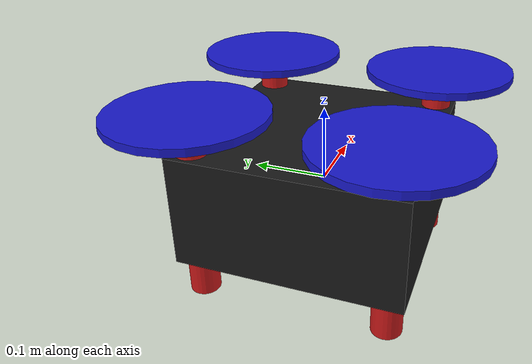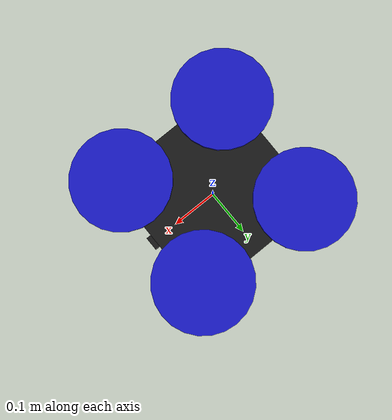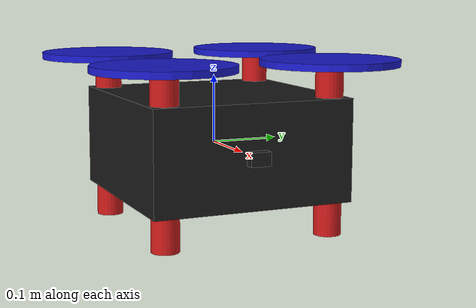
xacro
<?xml version="1.0"?>
<robot name="quadrotor_drone" xmlns:xacro="http://www.ros.org/wiki/xacro">

  <!-- Define properties -->
  <xacro:property name="mass" value="1.0" />
  <xacro:property name="body_width" value="0.3" />
  <xacro:property name="body_height" value="0.15" />
  <xacro:property name="arm_length" value="0.25" />
  <xacro:property name="prop_radius" value="0.1" />

  <!-- Inertia values -->
  <xacro:property name="ixx" value="0.0347563" />
  <xacro:property name="iyy" value="0.0458929" />
  <xacro:property name="izz" value="0.0977" />

  <!-- Include sensor macros -->
  <xacro:include filename="$(find drone_description)/urdf/sensors.xacro" />

  <!-- Base link -->
  <link name="base_link">
    <inertial>
      <origin xyz="0 0 0" rpy="0 0 0"/>
      <mass value="${mass}"/>
      <inertia ixx="${ixx}" ixy="0" ixz="0" iyy="${iyy}" iyz="0" izz="${izz}"/>
    </inertial>

    <visual>
      <origin xyz="0 0 0" rpy="0 0 0"/>
      <geometry>
        <box size="${body_width} ${body_width} ${body_height}"/>
      </geometry>
      <material name="black">
        <color rgba="0.1 0.1 0.1 1"/>
      </material>
    </visual>

    <collision>
      <origin xyz="0 0 0" rpy="0 0 0"/>
      <geometry>
        <box size="${body_width} ${body_width} ${body_height}"/>
      </geometry>
    </collision>
  </link>

  <!-- Front left arm -->
  <link name="front_left_arm">
    <visual>
      <origin xyz="0 0 0" rpy="0 0 0"/>
      <geometry>
        <cylinder radius="0.02" length="${arm_length}"/>
      </geometry>
      <material name="red">
        <color rgba="0.8 0.1 0.1 1"/>
      </material>
    </visual>
    <collision>
      <origin xyz="0 0 0" rpy="0 0 0"/>
      <geometry>
        <cylinder radius="0.02" length="${arm_length}"/>
      </geometry>
    </collision>
  </link>

  <joint name="front_left_arm_joint" type="fixed">
    <parent link="base_link"/>
    <child link="front_left_arm"/>
    <origin xyz="${arm_length/2} ${arm_length/2} 0" rpy="0 0 ${pi/4}"/>
  </joint>

  <!-- Front right arm -->
  <link name="front_right_arm">
    <visual>
      <origin xyz="0 0 0" rpy="0 0 0"/>
      <geometry>
        <cylinder radius="0.02" length="${arm_length}"/>
      </geometry>
      <material name="red">
        <color rgba="0.8 0.1 0.1 1"/>
      </material>
    </visual>
    <collision>
      <origin xyz="0 0 0" rpy="0 0 0"/>
      <geometry>
        <cylinder radius="0.02" length="${arm_length}"/>
      </geometry>
    </collision>
  </link>

  <joint name="front_right_arm_joint" type="fixed">
    <parent link="base_link"/>
    <child link="front_right_arm"/>
    <origin xyz="${arm_length/2} ${-arm_length/2} 0" rpy="0 0 ${-pi/4}"/>
  </joint>

  <!-- Back left arm -->
  <link name="back_left_arm">
    <visual>
      <origin xyz="0 0 0" rpy="0 0 0"/>
      <geometry>
        <cylinder radius="0.02" length="${arm_length}"/>
      </geometry>
      <material name="red">
        <color rgba="0.8 0.1 0.1 1"/>
      </material>
    </visual>
    <collision>
      <origin xyz="0 0 0" rpy="0 0 0"/>
      <geometry>
        <cylinder radius="0.02" length="${arm_length}"/>
      </geometry>
    </collision>
  </link>

  <joint name="back_left_arm_joint" type="fixed">
    <parent link="base_link"/>
    <child link="back_left_arm"/>
    <origin xyz="${-arm_length/2} ${arm_length/2} 0" rpy="0 0 ${3*pi/4}"/>
  </joint>

  <!-- Back right arm -->
  <link name="back_right_arm">
    <visual>
      <origin xyz="0 0 0" rpy="0 0 0"/>
      <geometry>
        <cylinder radius="0.02" length="${arm_length}"/>
      </geometry>
      <material name="red">
        <color rgba="0.8 0.1 0.1 1"/>
      </material>
    </visual>
    <collision>
      <origin xyz="0 0 0" rpy="0 0 0"/>
      <geometry>
        <cylinder radius="0.02" length="${arm_length}"/>
      </geometry>
    </collision>
  </link>

  <joint name="back_right_arm_joint" type="fixed">
    <parent link="base_link"/>
    <child link="back_right_arm"/>
    <origin xyz="${-arm_length/2} ${-arm_length/2} 0" rpy="0 0 ${-3*pi/4}"/>
  </joint>

  <!-- Propellers -->
  <xacro:macro name="propeller" params="name x y">
    <link name="${name}_propeller">
      <visual>
        <origin xyz="0 0 0" rpy="0 0 0"/>
        <geometry>
          <cylinder radius="${prop_radius}" length="0.01"/>
        </geometry>
        <material name="blue">
          <color rgba="0.1 0.1 0.8 1"/>
        </material>
      </visual>
    </link>

    <joint name="${name}_propeller_joint" type="continuous">
      <parent link="base_link"/>
      <child link="${name}_propeller"/>
      <origin xyz="${x} ${y} ${body_height/2 + 0.05}" rpy="0 0 0"/>
      <axis xyz="0 0 1"/>
    </joint>
  </xacro:macro>

  <xacro:propeller name="front_left" x="${arm_length/2}" y="${arm_length/2}" />
  <xacro:propeller name="front_right" x="${arm_length/2}" y="${-arm_length/2}" />
  <xacro:propeller name="back_left" x="${-arm_length/2}" y="${arm_length/2}" />
  <xacro:propeller name="back_right" x="${-arm_length/2}" y="${-arm_length/2}" />

  <!-- Add sensors -->
  <xacro:imu_sensor parent="base_link" />
  <xacro:sonar_sensor parent="base_link" />
  <xacro:camera_sensor parent="base_link" />
  <xacro:barometer_sensor parent="base_link" />
  <xacro:magnetometer_sensor parent="base_link" />

  <!-- Gazebo specific properties -->
  <gazebo>
    <plugin name="gazebo_ros_control" filename="libgazebo_ros_control.so">
      <robotNamespace>/</robotNamespace>
    </plugin>
  </gazebo>

  <!-- Gazebo materials -->
  <gazebo reference="base_link">
    <material>Gazebo/DarkGrey</material>
  </gazebo>

  <gazebo reference="front_left_arm">
    <material>Gazebo/Red</material>
  </gazebo>

  <gazebo reference="front_right_arm">
    <material>Gazebo/Red</material>
  </gazebo>

  <gazebo reference="back_left_arm">
    <material>Gazebo/Red</material>
  </gazebo>

  <gazebo reference="back_right_arm">
    <material>Gazebo/Red</material>
  </gazebo>

</robot>

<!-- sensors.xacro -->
<robot xmlns:xacro="http://www.ros.org/wiki/xacro">

  <!-- IMU Sensor -->
  <xacro:macro name="imu_sensor" params="parent">
    <link name="imu_link">
      <visual>
        <origin xyz="0 0 0" rpy="0 0 0"/>
        <geometry>
          <box size="0.02 0.02 0.01"/>
        </geometry>
        <material name="green">
          <color rgba="0.1 0.8 0.1 1"/>
        </material>
      </visual>
    </link>

    <joint name="imu_joint" type="fixed">
      <parent link="${parent}"/>
      <child link="imu_link"/>
      <origin xyz="0 0 0.02" rpy="0 0 0"/>
    </joint>

    <gazebo reference="imu_link">
      <sensor name="imu_sensor" type="imu">
        <always_on>true</always_on>
        <update_rate>100</update_rate>
        <visualize>true</visualize>
        <imu>
          <angular_velocity>
            <x>
              <noise type="gaussian">
                <mean>0.0</mean>
                <stddev>2e-4</stddev>
              </noise>
            </x>
            <y>
              <noise type="gaussian">
                <mean>0.0</mean>
                <stddev>2e-4</stddev>
              </noise>
            </y>
            <z>
              <noise type="gaussian">
                <mean>0.0</mean>
                <stddev>2e-4</stddev>
              </noise>
            </z>
          </angular_velocity>
          <linear_acceleration>
            <x>
              <noise type="gaussian">
                <mean>0.0</mean>
                <stddev>1.7e-2</stddev>
              </noise>
            </x>
            <y>
              <noise type="gaussian">
                <mean>0.0</mean>
                <stddev>1.7e-2</stddev>
              </noise>
            </y>
            <z>
              <noise type="gaussian">
                <mean>0.0</mean>
                <stddev>1.7e-2</stddev>
              </noise>
            </z>
          </linear_acceleration>
        </imu>
        <plugin name="gz::sim::systems::ImuSystem" filename="gz-sim-imu-system"/>
      </sensor>
    </gazebo>
  </xacro:macro>

  <!-- Sonar Sensor (pointing down) -->
  <xacro:macro name="sonar_sensor" params="parent">
    <link name="sonar_link">
      <visual>
        <origin xyz="0 0 0" rpy="0 0 0"/>
        <geometry>
          <cylinder radius="0.015" length="0.03"/>
        </geometry>
        <material name="yellow">
          <color rgba="0.8 0.8 0.1 1"/>
        </material>
      </visual>
    </link>

    <joint name="sonar_joint" type="fixed">
      <parent link="${parent}"/>
      <child link="sonar_link"/>
      <origin xyz="0 0 -0.08" rpy="0 ${pi/2} 0"/>
    </joint>

    <gazebo reference="sonar_link">
      <sensor name="sonar_sensor" type="ray">
        <always_on>true</always_on>
        <update_rate>20</update_rate>
        <visualize>true</visualize>
        <ray>
          <scan>
            <horizontal>
              <samples>1</samples>
              <min_angle>0</min_angle>
              <max_angle>0</max_angle>
            </horizontal>
            <vertical>
              <samples>1</samples>
              <min_angle>0</min_angle>
              <max_angle>0</max_angle>
            </vertical>
          </scan>
          <range>
            <min>0.05</min>
            <max>10.0</max>
          </range>
          <noise>
            <type>gaussian</type>
            <mean>0.0</mean>
            <stddev>0.02</stddev>
          </noise>
        </ray>
        <plugin name="gz::sim::systems::RaySystem" filename="gz-sim-ray-system"/>
      </sensor>
    </gazebo>
  </xacro:macro>

  <!-- Front Camera -->
  <xacro:macro name="camera_sensor" params="parent">
    <link name="camera_link">
      <visual>
        <origin xyz="0 0 0" rpy="0 0 0"/>
        <geometry>
          <box size="0.03 0.03 0.02"/>
        </geometry>
        <material name="black">
          <color rgba="0.1 0.1 0.1 1"/>
        </material>
      </visual>
    </link>

    <joint name="camera_joint" type="fixed">
      <parent link="${parent}"/>
      <child link="camera_link"/>
      <origin xyz="0.15 0 0" rpy="0 0 0"/>
    </joint>

    <gazebo reference="camera_link">
      <sensor name="camera_sensor" type="camera">
        <always_on>true</always_on>
        <update_rate>30</update_rate>
        <visualize>true</visualize>
        <camera>
          <horizontal_fov>1.3962634</horizontal_fov>
          <image>
            <width>640</width>
            <height>480</height>
            <format>R8G8B8</format>
          </image>
          <clip>
            <near>0.02</near>
            <far>300</far>
          </clip>
          <noise>
            <type>gaussian</type>
            <mean>0.0</mean>
            <stddev>0.007</stddev>
          </noise>
        </camera>
        <plugin name="gz::sim::systems::CameraSystem" filename="gz-sim-camera-system"/>
      </sensor>
    </gazebo>
  </xacro:macro>

  <!-- Barometer Sensor -->
  <xacro:macro name="barometer_sensor" params="parent">
    <link name="barometer_link">
      <visual>
        <origin xyz="0 0 0" rpy="0 0 0"/>
        <geometry>
          <box size="0.015 0.015 0.005"/>
        </geometry>
        <material name="purple">
          <color rgba="0.8 0.1 0.8 1"/>
        </material>
      </visual>
    </link>

    <joint name="barometer_joint" type="fixed">
      <parent link="${parent}"/>
      <child link="barometer_link"/>
      <origin xyz="0.05 0.05 0.02" rpy="0 0 0"/>
    </joint>

    <!-- Barometer plugin will be implemented in ROS2 node -->
  </xacro:macro>

  <!-- Magnetometer Sensor -->
  <xacro:macro name="magnetometer_sensor" params="parent">
    <link name="magnetometer_link">
      <visual>
        <origin xyz="0 0 0" rpy="0 0 0"/>
        <geometry>
          <box size="0.01 0.01 0.005"/>
        </geometry>
        <material name="orange">
          <color rgba="0.8 0.5 0.1 1"/>
        </material>
      </visual>
    </link>

    <joint name="magnetometer_joint" type="fixed">
      <parent link="${parent}"/>
      <child link="magnetometer_link"/>
      <origin xyz="-0.05 0.05 0.02" rpy="0 0 0"/>
    </joint>

    <!-- Magnetometer plugin will be implemented in ROS2 node -->
  </xacro:macro>

</robot>
